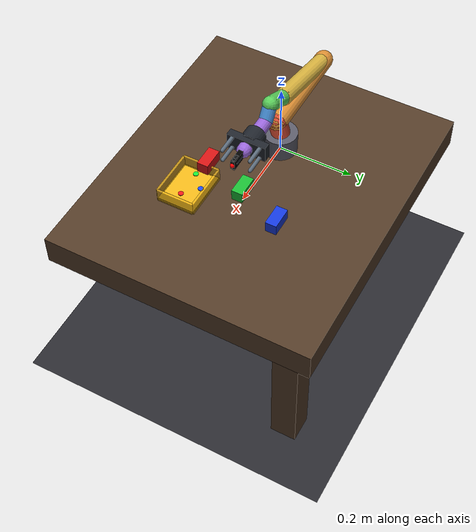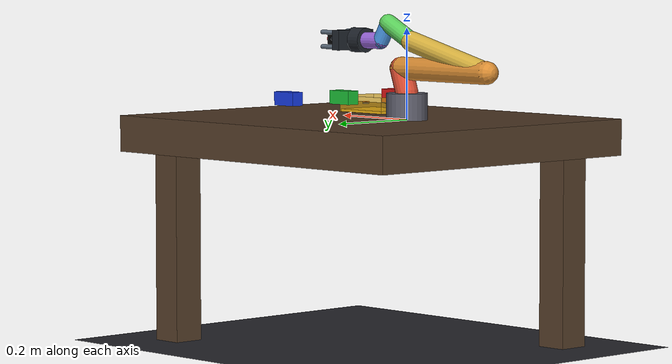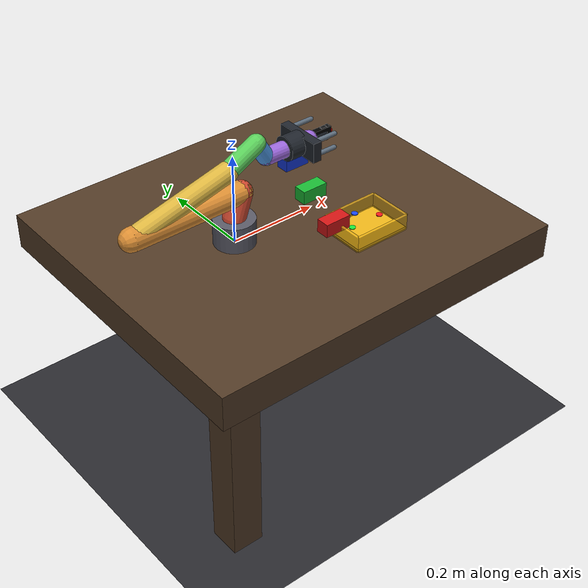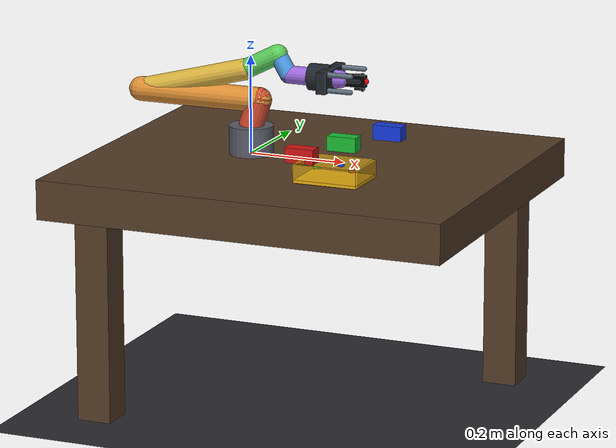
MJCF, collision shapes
<mujoco model="pathera_grasp_mujoco">
  <!-- 仅仿真模型：不包含 CAN、RealSense、NPU 或任何真机插件。 -->
  <compiler angle="radian" autolimits="true"/>
  <option timestep="0.002" gravity="0 0 -9.81" integrator="implicitfast"/>
  <default>
    <joint damping="0.8" armature="0.01"/>
    <geom friction="0.9 0.02 0.001" condim="3"/>
    <position kp="100" forcelimited="true"/>
  </default>

  <asset>
    <!-- 视觉网格源自 Panthera-HT_description；碰撞仍使用下方的轻量代理。 -->
    <mesh name="panthera_base_mesh" file="../../Panthera-HT_SDK/panthera_python/Panthera-HT_description/meshes/base_link.STL"/>
    <mesh name="panthera_link1_mesh" file="../../Panthera-HT_SDK/panthera_python/Panthera-HT_description/meshes/link1.STL"/>
    <mesh name="panthera_link2_mesh" file="../assets/panthera_ht_stl/link2_visual.STL"/>
    <mesh name="panthera_link3_mesh" file="../../Panthera-HT_SDK/panthera_python/Panthera-HT_description/meshes/link3.STL"/>
    <mesh name="panthera_link4_mesh" file="../../Panthera-HT_SDK/panthera_python/Panthera-HT_description/meshes/link4.STL"/>
    <mesh name="panthera_link5_mesh" file="../../Panthera-HT_SDK/panthera_python/Panthera-HT_description/meshes/link5.STL"/>
    <mesh name="panthera_link6_mesh" file="../../Panthera-HT_SDK/panthera_python/Panthera-HT_description/meshes/link6.STL"/>
    <!-- Official RealSense ROS D405 mesh; source and Apache-2.0 notice are adjacent. -->
    <mesh name="realsense_d405_mesh" file="../assets/realsense_d405/d405.stl" scale="0.001 0.001 0.001"/>
    <material name="mat_panthera" rgba="0.24 0.28 0.33 1" specular="0.45" shininess="0.55"/>
    <material name="mat_realsense" rgba="0.10 0.12 0.14 1" specular="0.55" shininess="0.70"/>
    <material name="mat_table" rgba="0.32 0.23 0.15 1"/>
    <material name="mat_block_red" rgba="0.82 0.08 0.08 1"/>
    <material name="mat_block_green" rgba="0.10 0.72 0.20 1"/>
    <material name="mat_block_blue" rgba="0.08 0.22 0.85 1"/>
    <material name="mat_put1" rgba="0.92 0.70 0.10 0.70"/>
    <material name="mat_gripper_metal" rgba="0.12 0.14 0.17 1" specular="0.60" shininess="0.75"/>
    <material name="mat_gripper_accent" rgba="0.36 0.42 0.48 1" specular="0.50" shininess="0.65"/>
    <material name="mat_gripper_pad" rgba="0.055 0.060 0.065 1" specular="0.08" shininess="0.10"/>
  </asset>

  <worldbody>
    <light name="key" directional="true" pos="0 -1 2" dir="0.1 0.4 -1" diffuse="0.9 0.9 0.9"/>
    <light name="fill" directional="true" pos="-1 1 1.5" dir="0.5 -0.4 -1" diffuse="0.35 0.35 0.35"/>
    <geom name="floor" type="plane" pos="0 0 -0.50" size="2 2 0.1" rgba="0.16 0.16 0.18 1"/>

    <!-- 实测时只需在 scene_calibration.yaml 同步更新桌面和放置区。 -->
    <body name="work_table" pos="0.12 0 0.0">
      <geom name="table_top" type="box" pos="0 0 -0.04" size="0.42 0.36 0.04" material="mat_table"/>
      <geom name="table_leg_left" type="box" pos="-0.33 -0.27 -0.29" size="0.035 0.035 0.21" material="mat_table"/>
      <geom name="table_leg_right" type="box" pos="0.33 0.27 -0.29" size="0.035 0.035 0.21" material="mat_table"/>
    </body>

    <!-- MuJoCo world coordinates are the same Base frame used by the planner/URDF. -->
    <body name="base_link" pos="0 0 0">
      <inertial pos="0.00005789 -0.00015938 0.02298649" mass="0.62922454" fullinertia="0.00061305 0.00063876 0.0007565 -0.00000132 0.00000169 -0.00000021"/>
      <geom name="base_visual_mesh" group="1" type="mesh" mesh="panthera_base_mesh" contype="0" conaffinity="0" material="mat_panthera"/>
      <geom name="base_collision" group="1" contype="2" conaffinity="1" type="cylinder" fromto="0 0 0 0 0 0.0584" size="0.045" rgba="0.35 0.35 0.40 0"/>
      <body name="link1" pos="0 0 0.0584">
        <inertial pos="0.00278873 -0.00094387 0.02491842" mass="0.28101551" fullinertia="0.00039386 0.0002136 0.00037066 0.00000375 -0.00003733 0.00000717"/>
        <joint name="joint1" type="hinge" axis="0 0 1" range="-2.4 2.4"/>
        <geom name="link1_visual_mesh" group="1" type="mesh" mesh="panthera_link1_mesh" contype="0" conaffinity="0" material="mat_panthera"/>
        <geom name="link1_collision" group="1" contype="2" conaffinity="1" type="capsule" fromto="0 0 0 0.018199 0 0.053" size="0.025" rgba="0.85 0.30 0.20 0"/>
        <body name="link2" pos="0.018199 0 0.053">
          <inertial pos="-0.12936212 -0.00213339 0.00007183" mass="1.5165092" fullinertia="0.00044711 0.02261049 0.02272105 0.00003071 -0.00005119 0.00000301"/>
          <joint name="joint2" type="hinge" axis="0 1 0" range="0 3.2"/>
          <geom name="link2_visual_mesh" group="1" type="mesh" mesh="panthera_link2_mesh" contype="0" conaffinity="0" material="mat_panthera"/>
          <geom name="link2_collision" group="1" contype="2" conaffinity="1" type="capsule" fromto="0 0 0 -0.26 0 0" size="0.025" rgba="0.85 0.55 0.20 0"/>
          <body name="link3" pos="-0.26 0 0">
            <inertial pos="0.16343103 -0.00164646 0.05337427" mass="0.66917784" fullinertia="0.00061339 0.00538615 0.00532976 -0.00001439 -0.00070321 -0.00001404"/>
            <joint name="joint3" type="hinge" axis="0 -1 0" range="0 4.0"/>
            <geom name="link3_visual_mesh" group="1" type="mesh" mesh="panthera_link3_mesh" contype="0" conaffinity="0" material="mat_panthera"/>
            <geom name="link3_collision" group="1" contype="2" conaffinity="1" type="capsule" fromto="0 0 0 0.23 0 0.06" size="0.022" rgba="0.85 0.70 0.25 0"/>
            <body name="link4" pos="0.23 0 0.06">
              <inertial pos="0.05240131 -0.00055249 0.04094177" mass="0.30780516" fullinertia="0.00025787 0.00039454 0.00035094 -0.00001011 -0.00017337 -0.00000809"/>
              <joint name="joint4" type="hinge" axis="0 -1 0" range="-1.6 1.6"/>
              <geom name="link4_visual_mesh" group="1" type="mesh" mesh="panthera_link4_mesh" contype="0" conaffinity="0" material="mat_panthera"/>
              <geom name="link4_collision" group="1" contype="2" conaffinity="1" type="capsule" fromto="0 0 0 0.07 0 0.036319" size="0.020" rgba="0.35 0.80 0.35 0"/>
              <body name="link5" pos="0.07 0 0.036319">
                <inertial pos="0.00303007 0.00008509 -0.03624079" mass="0.23711139" fullinertia="0.00004815 0.00005773 0.00003359 -0.00000003 -0.00000015 -0.00000001"/>
                <joint name="joint5" type="hinge" axis="0 0 -1" range="-1.7 1.7"/>
                <geom name="link5_visual_mesh" group="1" type="mesh" mesh="panthera_link5_mesh" contype="0" conaffinity="0" material="mat_panthera"/>
                <geom name="link5_collision" group="1" contype="2" conaffinity="1" type="capsule" fromto="0 0 0 0.02345 0 -0.039" size="0.018" rgba="0.30 0.60 0.90 0"/>
                <body name="link6" pos="0.02345 0 -0.039">
                  <inertial pos="0.06704625 0.00051731 0.00001674" mass="0.30" fullinertia="0.00107368 0.00068998 0.00167551 -0.0000125 0.0000003 0.00002517"/>
                  <joint name="joint6" type="hinge" axis="1 0 0" range="-2.5 2.5"/>
                  <geom name="link6_visual_mesh" group="1" type="mesh" mesh="panthera_link6_mesh" contype="0" conaffinity="0" material="mat_panthera"/>
                  <!-- group=1 is a coarse self-collision proxy, hidden from the virtual wrist camera. -->
                  <!-- Conservative wrist proxy stops 55 mm before the calibrated TCP. -->
                  <geom name="link6_collision" group="1" contype="2" conaffinity="1" type="capsule" fromto="0 0 0 0.110 0 0" size="0.018" rgba="0.60 0.40 0.85 0"/>
                  <body name="tool_link" pos="0.165 0 0">
                    <!-- Planner TCP: exactly joint6 + [0.165, 0, 0], matching grasp_config.py. -->
                    <site name="tcp" group="1" type="sphere" pos="0 0 0" size="0.006" rgba="1 0 0 1"/>
                    <!-- The calibrated planner TCP is also the simplified grasp centre. -->
                    <site name="grasp_site" group="1" type="sphere" pos="0 0 0" size="0.004" rgba="1 1 0 1"/>
                    <!-- T_tcp_camera 使用已存手眼标定；四元数另含 OpenCV 光学帧到 MuJoCo 相机帧的 y/z 翻转。 -->
                  <body name="d405_visual_mount" pos="-0.08539455 0.01009073 0.06531856" quat="0.59041566 0.39719526 -0.40185391 -0.57633212">
                      <!-- Official URDF visual transform: front glass origin between the two IR axes. -->
                      <geom name="d405_visual_mesh" group="1" type="mesh" mesh="realsense_d405_mesh" pos="0.0038 -0.009 0" euler="1.57079632679 0 1.57079632679" contype="0" conaffinity="0" material="mat_realsense"/>
                    <camera name="wrist_rgbd" pos="0 0 0" fovy="55"/>
                  </body>
                    <body name="gripper_base" pos="0 0 0">
                      <!-- CAD-free visual parallel-jaw proxy.  The hidden box
                           pads retain the established contact dimensions. -->
                      <geom name="gripper_mount_plate" group="1" type="cylinder" pos="-0.098 0 0" euler="0 1.57079632679 0" size="0.027 0.020" material="mat_gripper_metal" contype="0" conaffinity="0"/>
                      <geom name="gripper_crosshead" group="1" type="box" pos="-0.075 0 0" size="0.010 0.052 0.022" material="mat_gripper_metal" contype="0" conaffinity="0"/>
                      <geom name="gripper_guide_left" group="1" type="capsule" fromto="-0.076 0.037 0.016 -0.018 0.037 0.016" size="0.005" material="mat_gripper_accent" contype="0" conaffinity="0"/>
                      <geom name="gripper_guide_right" group="1" type="capsule" fromto="-0.076 -0.037 0.016 -0.018 -0.037 0.016" size="0.005" material="mat_gripper_accent" contype="0" conaffinity="0"/>
                      <geom name="gripper_guide_left_lower" group="1" type="capsule" fromto="-0.076 0.037 -0.016 -0.018 0.037 -0.016" size="0.005" material="mat_gripper_accent" contype="0" conaffinity="0"/>
                      <geom name="gripper_guide_right_lower" group="1" type="capsule" fromto="-0.076 -0.037 -0.016 -0.018 -0.037 -0.016" size="0.005" material="mat_gripper_accent" contype="0" conaffinity="0"/>
                      <body name="left_finger" pos="0 0 0">
                        <joint name="gripper_left" type="slide" axis="0 1 0" range="0 0.040"/>
                        <geom name="left_finger_visual_rail" group="1" type="capsule" fromto="-0.073 0 0 -0.014 0 0" size="0.0075" material="mat_gripper_metal" contype="0" conaffinity="0"/>
                        <geom name="left_finger_visual_knuckle" group="1" type="cylinder" pos="-0.058 0 0" euler="1.57079632679 0 0" size="0.014 0.009" material="mat_gripper_accent" contype="0" conaffinity="0"/>
                        <geom name="left_finger_visual_pad" group="1" type="box" pos="-0.013 0 -0.002" size="0.010 0.0035 0.016" material="mat_gripper_pad" contype="0" conaffinity="0"/>
                        <geom name="left_finger_visual_tip" group="1" type="capsule" fromto="-0.007 0 -0.016 -0.007 0 0.012" size="0.0045" material="mat_gripper_pad" contype="0" conaffinity="0"/>
                        <geom name="left_finger_collision" group="2" contype="2" conaffinity="1" type="box" pos="-0.035 0 0" size="0.035 0.006 0.012" rgba="0 0 0 0"/>
                      </body>
                      <body name="right_finger" pos="0 0 0">
                        <joint name="gripper_right" type="slide" axis="0 -1 0" range="0 0.040"/>
                        <geom name="right_finger_visual_rail" group="1" type="capsule" fromto="-0.073 0 0 -0.014 0 0" size="0.0075" material="mat_gripper_metal" contype="0" conaffinity="0"/>
                        <geom name="right_finger_visual_knuckle" group="1" type="cylinder" pos="-0.058 0 0" euler="1.57079632679 0 0" size="0.014 0.009" material="mat_gripper_accent" contype="0" conaffinity="0"/>
                        <geom name="right_finger_visual_pad" group="1" type="box" pos="-0.013 0 -0.002" size="0.010 0.0035 0.016" material="mat_gripper_pad" contype="0" conaffinity="0"/>
                        <geom name="right_finger_visual_tip" group="1" type="capsule" fromto="-0.007 0 -0.016 -0.007 0 0.012" size="0.0045" material="mat_gripper_pad" contype="0" conaffinity="0"/>
                        <geom name="right_finger_collision" group="2" contype="2" conaffinity="1" type="box" pos="-0.035 0 0" size="0.035 0.006 0.012" rgba="0 0 0 0"/>
                      </body>
                    </body>
                  </body>
                </body>
              </body>
            </body>
          </body>
        </body>
      </body>
    </body>

    <!-- 三块 3×3×6 cm 积木；reset() 依据 scene_seed 将其散落到桌面。 -->
    <body name="block_red" pos="0.16 -0.12 0.040">
      <freejoint name="block_red_free"/>
      <geom name="block_red_geom" type="box" size="0.030 0.015 0.015" mass="0.045" material="mat_block_red"/>
    </body>
    <body name="block_green" pos="0.20 0.0 0.040">
      <freejoint name="block_green_free"/>
      <geom name="block_green_geom" type="box" size="0.030 0.015 0.015" mass="0.045" material="mat_block_green"/>
    </body>
    <body name="block_blue" pos="0.25 0.12 0.040">
      <freejoint name="block_blue_free"/>
      <geom name="block_blue_geom" type="box" size="0.030 0.015 0.015" mass="0.045" material="mat_block_blue"/>
    </body>
    <body name="put1_bin" pos="0.235 -0.135 0.0">
      <geom name="put1_floor" type="box" pos="0 0 0.003" size="0.065 0.050 0.003" material="mat_put1"/>
      <geom name="put1_left_wall" type="box" pos="-0.065 0 0.018" size="0.003 0.050 0.018" material="mat_put1" contype="0" conaffinity="0"/>
      <geom name="put1_right_wall" type="box" pos="0.065 0 0.018" size="0.003 0.050 0.018" material="mat_put1" contype="0" conaffinity="0"/>
      <geom name="put1_back_wall" type="box" pos="0 0.050 0.018" size="0.065 0.003 0.018" material="mat_put1" contype="0" conaffinity="0"/>
      <geom name="put1_front_wall" type="box" pos="0 -0.050 0.018" size="0.065 0.003 0.018" material="mat_put1" contype="0" conaffinity="0"/>
      <site name="put1_green" type="cylinder" pos="-0.037 0 0.021" size="0.007 0.001" rgba="0.10 0.90 0.20 0.95"/>
      <site name="put1_red" type="cylinder" pos="0.037 0 0.021" size="0.007 0.001" rgba="0.95 0.10 0.10 0.95"/>
      <site name="put1_blue" type="cylinder" pos="0 0.035 0.021" size="0.007 0.001" rgba="0.10 0.28 0.95 0.95"/>
    </body>
  </worldbody>

  <actuator>
    <position name="joint1_act" joint="joint1" kp="200" ctrlrange="-2.4 2.4" forcerange="-21 21"/>
    <position name="joint2_act" joint="joint2" kp="250" ctrlrange="0 3.2" forcerange="-36 36"/>
    <position name="joint3_act" joint="joint3" kp="250" ctrlrange="0 4.0" forcerange="-36 36"/>
    <position name="joint4_act" joint="joint4" kp="200" ctrlrange="-1.6 1.6" forcerange="-21 21"/>
    <position name="joint5_act" joint="joint5" kp="150" ctrlrange="-1.7 1.7" forcerange="-10 10"/>
    <position name="joint6_act" joint="joint6" kp="150" ctrlrange="-2.5 2.5" forcerange="-10 10"/>
    <position name="gripper_left_act" joint="gripper_left" kp="120" ctrlrange="0 0.040" forcerange="-12 12"/>
    <position name="gripper_right_act" joint="gripper_right" kp="120" ctrlrange="0 0.040" forcerange="-12 12"/>
  </actuator>

  <equality>
    <joint name="gripper_sync" joint1="gripper_left" joint2="gripper_right" polycoef="0 1 0 0 0"/>
  </equality>

  <sensor>
    <jointpos name="joint1_pos" joint="joint1"/>
    <jointpos name="joint2_pos" joint="joint2"/>
    <jointpos name="joint3_pos" joint="joint3"/>
    <jointpos name="joint4_pos" joint="joint4"/>
    <jointpos name="joint5_pos" joint="joint5"/>
    <jointpos name="joint6_pos" joint="joint6"/>
    <framepos name="tcp_position" objtype="site" objname="tcp"/>
    <framepos name="grasp_position" objtype="site" objname="grasp_site"/>
  </sensor>
</mujoco>
